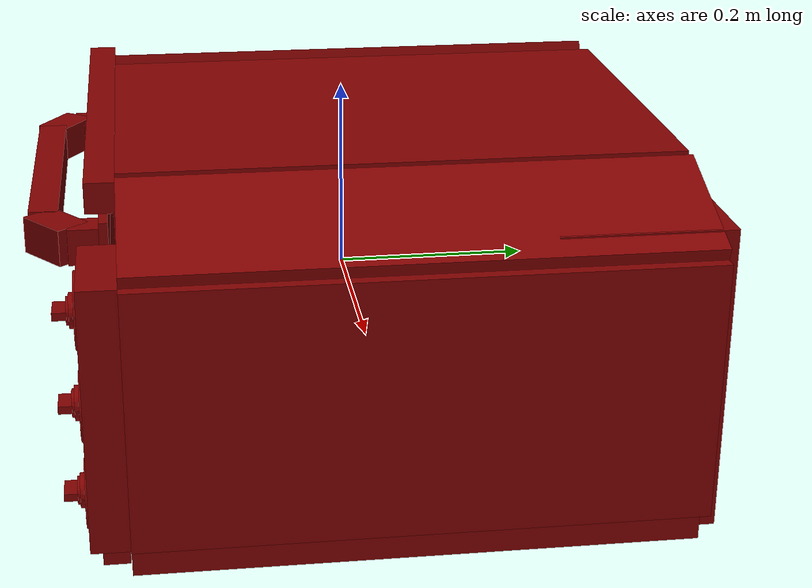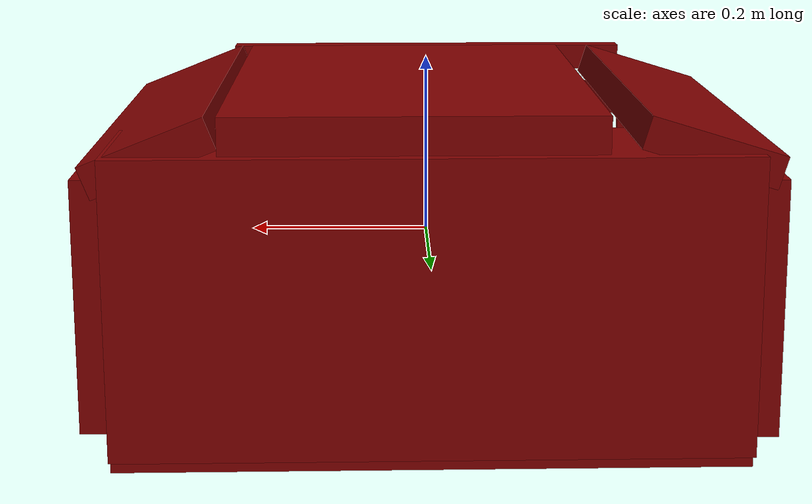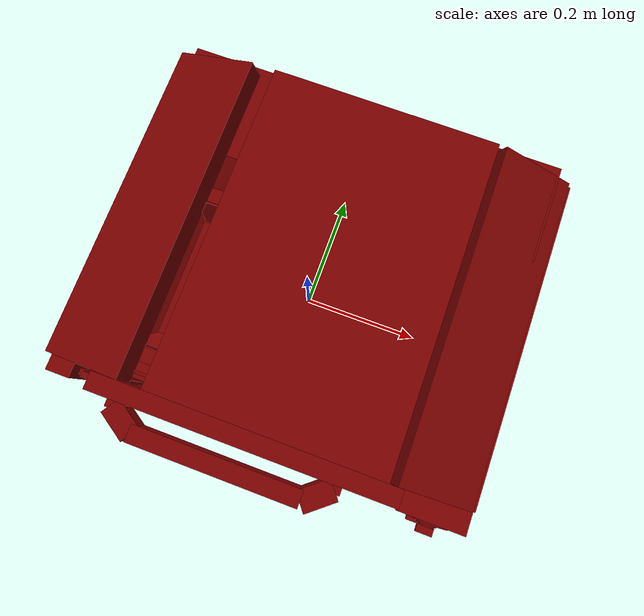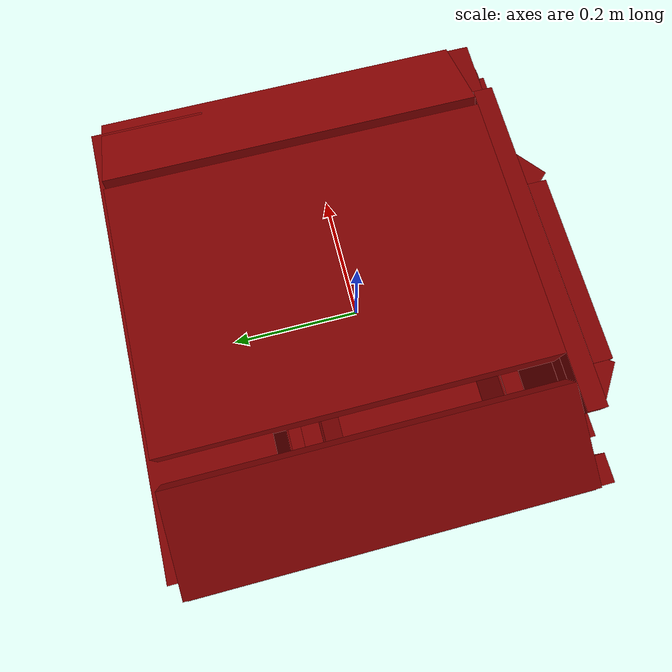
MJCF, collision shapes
<?xml version='1.0' encoding='UTF-8'?>
<mujoco model="model">
  <option timestep="0.002" gravity="0.0 0.0 -9.81"/>
  <compiler angle="radian"/>
  <asset>
    <mesh file="visuals/Body001.obj" name="Body001_vis"/>
    <mesh file="visuals/Container001.obj" name="Container001_vis"/>
    <mesh file="visuals/Door001.obj" name="Door001_vis"/>
    <mesh file="visuals/Door001_Clear.obj" name="Door001_Clear_vis"/>
    <mesh file="visuals/Knob001.obj" name="Knob001_vis"/>
    <mesh file="visuals/Knob002.obj" name="Knob002_vis"/>
    <mesh file="visuals/Knob003.obj" name="Knob003_vis"/>
    <mesh file="visuals/Shelf001.obj" name="Shelf001_vis"/>
    <texture file="visuals/T_BC001.png" name="Body001_material" type="2d"/>
    <material name="Body001_material" rgba="1 1 1 1.0" texture="Body001_material" shininess="0.2512328028678894" specular="1"/>
    <texture file="visuals/T_BC001.png" name="Container001_material" type="2d"/>
    <material name="Container001_material" rgba="1 1 1 1.0" texture="Container001_material" shininess="0.2512328028678894" specular="2"/>
    <texture file="visuals/T_BC001.png" name="Door001_material" type="2d"/>
    <material name="Door001_material" rgba="1 1 1 1.0" texture="Door001_material" shininess="0.2512328028678894" specular="1"/>
    <material name="Door001_Clear_material" rgba="0.07665680348873138 0.07665680348873138 0.07665680348873138 0.800000011920929" shininess="0.2512328028678894" specular="0.3103448502657381"/>
    <texture file="visuals/T_BC001.png" name="Knob001_material" type="2d"/>
    <material name="Knob001_material" rgba="1 1 1 1.0" texture="Knob001_material" shininess="0.2512328028678894" specular="0.3103448502657381"/>
    <texture file="visuals/T_BC001.png" name="Knob002_material" type="2d"/>
    <material name="Knob002_material" rgba="1 1 1 1.0" texture="Knob002_material" shininess="0.2512328028678894" specular="0.3103448502657381"/>
    <texture file="visuals/T_BC001.png" name="Knob003_material" type="2d"/>
    <material name="Knob003_material" rgba="1 1 1 1.0" texture="Knob003_material" shininess="0.2512328028678894" specular="0.3103448502657381"/>
    <texture file="visuals/T_BC001.png" name="Shelf001_material" type="2d"/>
    <material name="Shelf001_material" rgba="1 1 1 1.0" texture="Shelf001_material" shininess="0.2512328028678894" specular="2"/>
  </asset>
  <default>
    <default class="visual">
      <geom conaffinity="0" contype="0" group="1" type="mesh"/>
    </default>
    <default class="collision">
      <geom group="0" rgba="0.5 0 0 0.5"/>
    </default>
    <default class="spawn">
      <geom group="0" rgba="1 1 1 0.5" contype="0" conaffinity="0"/>
      <site group="0" rgba="1 1 1 0.5"/>
    </default>
    <default class="region">
      <geom group="1" conaffinity="0" contype="0" rgba="0 1 0 0"/>
    </default>
  </default>
  <worldbody>
    <body>
      <body name="object">
        <geom mesh="Body001_vis" type="mesh" solimp="0.998 0.998 0.001" solref="0.001 1" friction="0.95 0.3 0.1" class="visual" material="Body001_material"/>
        <geom class="collision" type="cylinder" pos="0.301326 -0.273185 -0.100376" size="0.036673109978437424 0.006221333518624306" quat="0.7071067094802856 0.7071068286895752 0.0 0.0" density="1000.0"/>
        <geom class="collision" type="cylinder" pos="0.301326 -0.273185 -0.008714" size="0.036673109978437424 0.006221333518624306" quat="0.7071067094802856 0.7071068286895752 0.0 0.0" density="1000.0"/>
        <geom class="collision" type="cylinder" pos="0.301515 -0.273185 0.084302" size="0.036673109978437424 0.006221333518624306" quat="0.7071067094802856 0.7071068286895752 0.0 0.0" density="1000.0"/>
        <geom class="collision" type="box" pos="-0.321272 0.037574 -0.015252" size="0.029950326308608055 0.27683815360069275 0.1338956654071808" quat="1.0 0.0 0.0 0.0" density="1000.0"/>
        <geom class="collision" type="box" pos="0.020236 0.037574 0.156759" size="0.1931111216545105 0.27683815360069275 0.026425858959555626" quat="1.0 0.0 0.0 0.0" density="1000.0"/>
        <geom class="collision" type="box" pos="-0.275853 0.037574 0.145433" size="0.017367539927363396 0.27683815360069275 0.07121719419956207" quat="0.59475177526474 -0.0 -0.803909420967102 -0.0" density="1000.0"/>
        <geom class="collision" type="box" pos="0.281732 0.037574 0.142435" size="0.017679747194051743 0.27683815360069275 0.06703846156597137" quat="0.5620537400245667 -4.329155700588672e-09 0.8271007537841797 3.2028215635193646e-09" density="1000.0"/>
        <geom class="collision" type="box" pos="0.288790 0.037574 -0.008588" size="0.06911389529705048 0.27683815360069275 0.130403071641922" quat="1.0 0.0 0.0 0.0" density="1000.0"/>
        <geom class="collision" type="box" pos="0.001474 0.037574 -0.153992" size="0.3271647095680237 0.27683815360069275 0.02687733620405197" quat="1.0 0.0 0.0 0.0" density="1000.0"/>
        <geom class="collision" type="box" pos="0.001474 0.244892 -0.010709" size="0.3271647095680237 0.08464127033948898 0.15496349334716797" quat="1.0 0.0 0.0 0.0" density="1000.0"/>
        <geom class="collision" type="box" pos="0.298658 -0.258016 -0.007292" size="0.0551380030810833 0.01869085803627968 0.13169851899147034" quat="1.0 0.0 0.0 0.0" density="1000.0"/>
        <geom class="collision" type="box" pos="-0.008721 -0.253718 0.167262" size="0.24454858899116516 0.014392198994755745 0.015185322612524033" quat="1.0 0.0 0.0 0.0" density="1000.0"/>
        <geom class="collision" type="box" pos="-0.328521 -0.253718 -0.016497" size="0.020201126113533974 0.014392198994755745 0.1319458931684494" quat="1.0 0.0 0.0 0.0" density="1000.0"/>
        <geom class="collision" type="box" pos="0.001474 -0.253129 -0.154935" size="0.3271647095680237 0.012976379133760929 0.012147435918450356" quat="1.0 0.0 0.0 0.0" density="1000.0"/>
        <geom class="collision" type="box" pos="-0.300131 0.037574 0.036083" size="0.01747884228825569 0.27683815360069275 0.013631334528326988" quat="1.0 0.0 0.0 0.0" density="1000.0"/>
        <geom class="collision" type="box" pos="-0.300131 0.037574 -0.092876" size="0.01747884228825569 0.27683815360069275 0.013631334528326988" quat="1.0 0.0 0.0 0.0" density="1000.0"/>
        <geom class="collision" type="box" pos="0.230551 0.037574 0.036083" size="0.01747884228825569 0.27683815360069275 0.013631334528326988" quat="1.0 0.0 0.0 0.0" density="1000.0"/>
        <geom class="collision" type="box" pos="0.230551 0.037574 -0.092981" size="0.01747884228825569 0.27683815360069275 0.013631334528326988" quat="1.0 0.0 0.0 0.0" density="1000.0"/>
        <body name="Container001">
          <joint axis="0.0 -1.0 0.0" pos="-0.034774 -0.039857 0.039333" limited="true" name="Container001_joint" range="0.0 0.35" type="slide" damping="1" frictionloss="1" armature=".01" stiffness="0.05"/>
          <geom mesh="Container001_vis" type="mesh" solimp="0.998 0.998 0.001" solref="0.001 1" friction="0.95 0.3 0.1" class="visual" material="Container001_material"/>
          <geom class="collision" type="box" pos="-0.034774 -0.039857 0.024948" size="0.19876432418823242 0.11329048126935959 0.003751558717340231" quat="1.0 0.0 0.0 0.0" density="1000.0"/>
          <geom class="collision" type="box" pos="-0.035225 -0.165041 0.042091" size="0.20513050258159637 0.019968902692198753 0.004110472742468119" quat="0.40984898805618286 0.912153422832489 0.0 0.0" density="1000.0"/>
          <geom class="collision" type="box" pos="-0.036814 -0.193358 0.054863" size="0.22429102659225464 0.013571429066359997 0.003666766919195652" quat="1.0 0.0 0.0 0.0" density="1000.0"/>
          <geom class="collision" type="box" pos="-0.035882 0.085094 0.041393" size="0.20634128153324127 0.019968904554843903 0.003059636102989316" quat="0.4098513722419739 -0.9121522903442383 -0.0 0.0" density="1000.0"/>
          <geom class="collision" type="box" pos="-0.035765 0.113033 0.054564" size="0.22803141176700592 0.013571410439908504 0.0033678472973406315" quat="1.0 0.0 0.0 0.0" density="1000.0"/>
          <geom class="collision" type="box" pos="-0.245944 -0.039294 0.042288" size="0.12153718620538712 0.019968904554843903 0.0042864130809903145" quat="0.277350515127182 -0.6504433751106262 -0.6504434943199158 0.2773505747318268" density="1000.0"/>
          <geom class="collision" type="box" pos="-0.274722 -0.040031 0.054968" size="0.013571400195360184 0.14400987327098846 0.0039155930280685425" quat="1.0 0.0 0.0 0.0" density="1000.0"/>
          <geom class="collision" type="box" pos="0.176739 -0.039294 0.041806" size="0.12153718620538712 0.019968906417489052 0.0035905642434954643" quat="0.27735045552253723 0.650443434715271 0.6504434943199158 0.2773504853248596" density="1000.0"/>
          <geom class="collision" type="box" pos="0.205085 -0.040031 0.054359" size="0.013571380637586117 0.14400972425937653 0.0033065902534872293" quat="1.0 0.0 0.0 0.0" density="1000.0"/>
        </body>
        <body name="Door001">
          <joint axis="1.0 0.0 0.0" pos="-0.040844 -0.253480 -0.132522" limited="true" name="Door001_joint" range="0.0 1.5707963267948966" type="hinge" damping="1" frictionloss="1" armature=".01" stiffness="1" springref="-1.5"/>
          <geom mesh="Door001_vis" type="mesh" solimp="0.998 0.998 0.001" solref="0.001 1" friction="0.95 0.3 0.1" class="visual" material="Door001_material"/>
          <geom class="collision" type="box" pos="-0.035036 -0.253936 -0.112161" size="0.2677095830440521 0.005871211178600788 0.016185365617275238" quat="1.0 0.0 0.0 0.0" density="1000.0"/>
          <geom class="collision" type="box" pos="-0.035035 -0.252528 0.113801" size="0.24922239780426025 0.004463052377104759 0.020792121067643166" quat="1.0 0.0 0.0 0.0" density="1000.0"/>
          <geom class="collision" type="box" pos="-0.279605 -0.253058 0.001607" size="0.023087654262781143 0.004992608912289143 0.09758260101079941" quat="1.0 0.0 0.0 0.0" density="1000.0"/>
          <geom class="collision" type="box" pos="0.208610 -0.253117 0.001607" size="0.02386791631579399 0.0050523541867733 0.09758260101079941" quat="1.0 0.0 0.0 0.0" density="1000.0"/>
          <geom class="collision" type="box" pos="-0.041840 -0.314439 0.089441" size="0.1453966349363327 0.014990800060331821 0.01897290349006653" quat="1.0 0.0 0.0 0.0" density="1000.0"/>
          <geom class="collision" type="box" pos="0.142081 -0.273979 0.089164" size="0.016352670267224312 0.015535363927483559 0.018696028739213943" quat="1.0 0.0 0.0 0.0" density="1000.0"/>
          <geom class="collision" type="box" pos="0.125845 -0.301090 0.089176" size="0.01860496588051319 0.02847464382648468 0.018707817420363426" quat="0.9017425775527954 0.0 -0.0 -0.4322735071182251" density="1000.0"/>
          <geom class="collision" type="box" pos="-0.223472 -0.273979 0.088498" size="0.016352670267224312 0.015535363927483559 0.018030351027846336" quat="1.0 0.0 0.0 0.0" density="1000.0"/>
          <geom class="collision" type="box" pos="-0.206890 -0.300512 0.088852" size="0.017758887261152267 0.028474638238549232 0.018384428694844246" quat="0.8793815970420837 0.0 0.0 0.47611770033836365" density="1000.0"/>
          <body name="Door001_Clear">
            <geom mesh="Door001_Clear_vis" type="mesh" solimp="0.998 0.998 0.001" solref="0.001 1" friction="0.95 0.3 0.1" class="visual" material="Door001_Clear_material"/>
            <geom class="collision" type="box" pos="-0.036553 -0.255472 -0.001465" size="0.21532145142555237 0.0031549439299851656 0.0891408622264862" quat="1.0 0.0 0.0 0.0" density="1000.0"/>
          </body>
        </body>
        <body name="Knob001">
          <joint axis="0.0 1.0 0.0" pos="0.301236 -0.288833 0.084358" limited="true" name="Knob001_joint" range="0.0 4.71238898038469" type="hinge" damping="0.05" armature="0.001" springref="-0.4"/>
          <geom mesh="Knob001_vis" type="mesh" solimp="0.998 0.998 0.001" solref="0.001 1" friction="0.95 0.3 0.1" class="visual" material="Knob001_material"/>
          <geom class="collision" type="cylinder" pos="0.301397 -0.282487 0.084479" size="0.01677282527089119 0.0019802239257842302" quat="0.7071067094802856 0.7071068286895752 0.0 0.0" density="1000.0"/>
          <geom class="collision" type="cylinder" pos="0.301397 -0.285123 0.084479" size="0.01342045608907938 0.0019802239257842302" quat="0.7071067094802856 0.7071068286895752 0.0 0.0" density="1000.0"/>
          <geom class="collision" type="box" pos="0.301346 -0.293203 0.084446" size="0.013565590605139732 0.006527393124997616 0.0038595926016569138" quat="1.0 0.0 0.0 0.0" density="1000.0"/>
        </body>
        <body name="Knob002">
          <joint axis="0.0 1.0 0.0" pos="0.301233 -0.288833 -0.008774" limited="true" name="Knob002_joint" range="0.0 4.71238898038469" type="hinge" damping="0.05" armature="0.001" springref="-0.4"/>
          <geom mesh="Knob002_vis" type="mesh" solimp="0.998 0.998 0.001" solref="0.001 1" friction="0.95 0.3 0.1" class="visual" material="Knob002_material"/>
          <geom class="collision" type="cylinder" pos="0.301397 -0.282487 -0.008523" size="0.01677282527089119 0.0019802239257842302" quat="0.7071067094802856 0.7071068286895752 0.0 0.0" density="1000.0"/>
          <geom class="collision" type="cylinder" pos="0.301397 -0.285123 -0.008523" size="0.01342045608907938 0.0019802239257842302" quat="0.7071067094802856 0.7071068286895752 0.0 0.0" density="1000.0"/>
          <geom class="collision" type="box" pos="0.301416 -0.293203 -0.008871" size="0.013565590605139732 0.006527393124997616 0.0038595926016569138" quat="1.0 0.0 0.0 0.0" density="1000.0"/>
        </body>
        <body name="Knob003">
          <joint axis="0.0 1.0 0.0" pos="0.301236 -0.288833 -0.100497" limited="true" name="Knob003_joint" range="0.0 4.71238898038469" type="hinge" damping="0.05" armature="0.001" springref="-0.4"/>
          <geom mesh="Knob003_vis" type="mesh" solimp="0.998 0.998 0.001" solref="0.001 1" friction="0.95 0.3 0.1" class="visual" material="Knob003_material"/>
          <geom class="collision" type="cylinder" pos="0.301326 -0.282487 -0.100376" size="0.01677282527089119 0.0019802239257842302" quat="0.7071067094802856 0.7071068286895752 0.0 0.0" density="1000.0"/>
          <geom class="collision" type="cylinder" pos="0.301326 -0.285123 -0.100376" size="0.01342045608907938 0.0019802239257842302" quat="0.7071067094802856 0.7071068286895752 0.0 0.0" density="1000.0"/>
          <geom class="collision" type="box" pos="0.301236 -0.293203 -0.100497" size="0.013565590605139732 0.006527393124997616 0.0038595926016569138" quat="1.0 0.0 0.0 0.0" density="1000.0"/>
        </body>
        <body name="Shelf001">
          <joint axis="0.0 -1.0 0.0" pos="-0.035005 -0.038287 -0.069778" limited="true" name="Shelf001_joint" range="0.0 0.35" type="slide" damping="1" frictionloss="1" armature=".01" stiffness="0.05"/>
          <geom mesh="Shelf001_vis" type="mesh" solimp="0.998 0.998 0.001" solref="0.001 1" friction="0.95 0.3 0.1" class="visual" material="Shelf001_material"/>
          <geom class="collision" type="box" pos="-0.034275 -0.038222 -0.063120" size="0.2520999014377594 0.19143888354301453 0.0011830365983769298" quat="1.0 0.0 0.0 0.0" density="1000.0"/>
          <geom class="collision" type="box" pos="-0.287849 -0.039772 -0.071038" size="0.0011830533621832728 0.16682182252407074 0.0067345560528337955" quat="1.0 0.0 0.0 0.0" density="1000.0"/>
          <geom class="collision" type="box" pos="0.217926 -0.039772 -0.071216" size="0.0011830510338768363 0.16682152450084686 0.006734546739608049" quat="1.0 0.0 0.0 0.0" density="1000.0"/>
        </body>
        <geom class="region" name="reg_int" type="box" pos="-0.035030500000000006 -0.0418775 0.0038610000000000033" size="0.2569995 0.2039375 0.132531"/>
        <geom class="region" name="reg_main" type="box" pos="5.000000000143778e-07 0.024617499999999987 0.0" size="0.3512225 0.30432349999999997 0.183185"/>
      </body>
    </body>
  </worldbody>
  <actuator>
    <motor name="Container001_joint_actuator" joint="Container001_joint" gear="15"/>
    <motor name="Door001_joint_actuator" joint="Door001_joint" gear="12"/>
    <motor name="Knob001_joint_actuator" joint="Knob001_joint" gear="10"/>
    <motor name="Knob002_joint_actuator" joint="Knob002_joint" gear="10"/>
    <motor name="Knob003_joint_actuator" joint="Knob003_joint" gear="10"/>
    <motor name="Shelf001_joint_actuator" joint="Shelf001_joint" gear="10"/>
  </actuator>
</mujoco>
